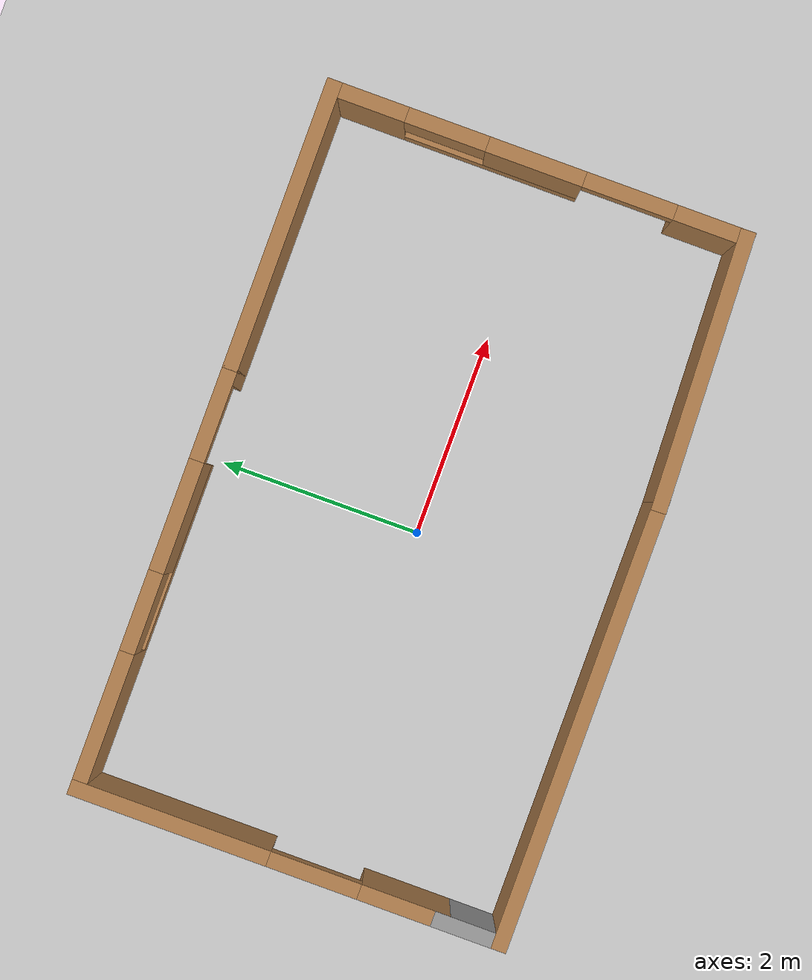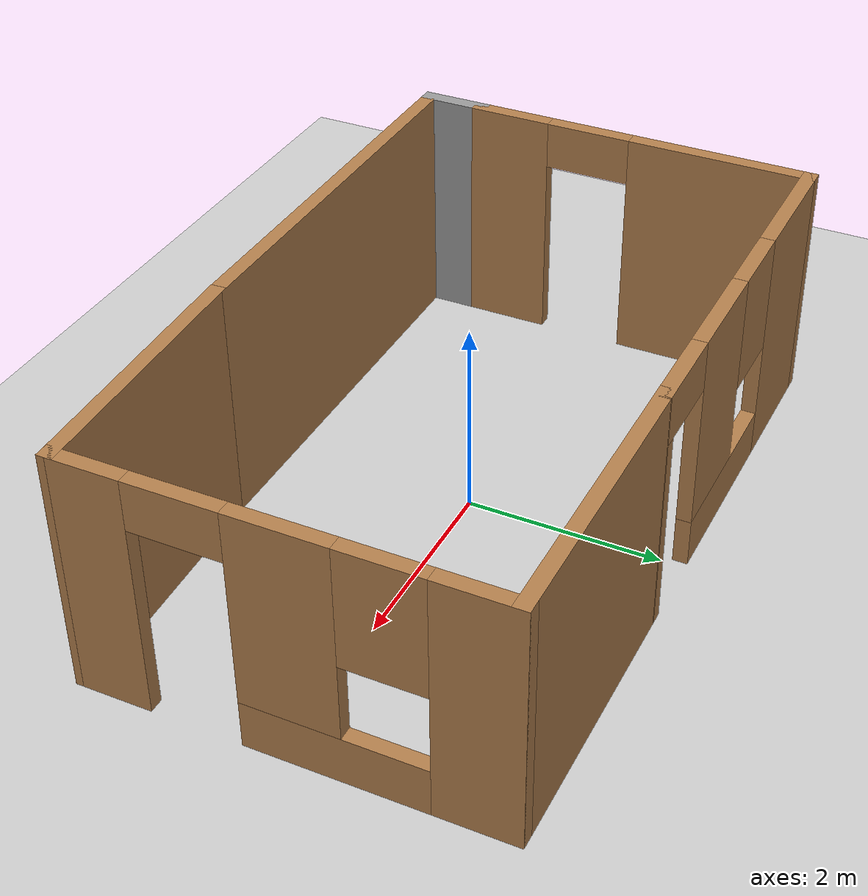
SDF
<sdf version="1.7">
 <world name="default">
  <light name="sun" type="directional">
   <pose>0 0 10 0 -0 0</pose>
   <diffuse>0.8 0.8 0.8 1</diffuse>
   <specular>0.2 0.2 0.2 1</specular>
   <attenuation>
    <range>1000</range>
    <constant>0.9</constant>
    <linear>0.01</linear>
    <quadratic>0.001</quadratic>
   </attenuation>
   <direction>-0.5 0.1 -0.9</direction>
   <spot><inner_angle>0</inner_angle><outer_angle>0</outer_angle><falloff>0</falloff></spot>
  </light>
  <model name="ground_plane">
   <static>1</static>
   <link name="link">
    <collision name="collision">
     <geometry><plane><normal>0 0 1</normal><size>100 100</size></plane></geometry>
     <surface><friction><ode><mu>100</mu><mu2>50</mu2></ode></friction></surface>
    </collision>
    <visual name="visual">
     <cast_shadows>0</cast_shadows>
     <geometry><plane><normal>0 0 1</normal><size>100 100</size></plane></geometry>
     <material>
      <script><uri>file://media/materials/scripts/gazebo.material</uri><name>Gazebo/Grey</name></script>
     </material>
    </visual>
   </link>
  </model>
  <gravity>0 0 -9.8</gravity>
  <magnetic_field>6e-06 2.3e-05 -4.2e-05</magnetic_field>
  <atmosphere type="adiabatic"/>
  <physics type="ode">
   <max_step_size>0.001</max_step_size>
   <real_time_factor>1</real_time_factor>
   <real_time_update_rate>1000</real_time_update_rate>
  </physics>
  <scene><ambient>0.4 0.4 0.4 1</ambient><background>0.7 0.7 0.7 1</background><shadows>1</shadows></scene>
  <audio><device>default</device></audio>
  <spherical_coordinates>
   <surface_model>EARTH_WGS84</surface_model>
   <latitude_deg>0</latitude_deg>
   <longitude_deg>0</longitude_deg>
   <elevation>0</elevation>
   <heading_deg>0</heading_deg>
  </spherical_coordinates>
  <model name="test">
   <pose>0.16051 0.06262 0 0 -0 0</pose>
   <link name="Wall_10">
    <collision name="Wall_10_Collision">
     <geometry><box><size>2.75192 0.15 2.5</size></box></geometry>
     <pose>0 0 1.25 0 -0 0</pose>
    </collision>
    <visual name="Wall_10_Visual">
     <pose>0 0 1.25 0 -0 0</pose>
     <geometry><box><size>2.75192 0.15 2.5</size></box></geometry>
     <material>
      <script><uri>file://media/materials/scripts/gazebo.material</uri><name>Gazebo/Wood</name></script>
      <ambient>1 1 1 1</ambient>
     </material>
     <meta><layer>0</layer></meta>
    </visual>
    <pose>2.17359 -2.04859 0 0 -0 -3.10315</pose>
   </link>
   <link name="Wall_3">
    <collision name="Wall_3_Collision">
     <geometry><box><size>4.5 0.15 2.5</size></box></geometry>
     <pose>0 0 1.25 0 -0 0</pose>
    </collision>
    <visual name="Wall_3_Visual">
     <pose>0 0 1.25 0 -0 0</pose>
     <geometry><box><size>4.5 0.15 2.5</size></box></geometry>
     <material>
      <script><uri>file://media/materials/scripts/gazebo.material</uri><name>Gazebo/Wood</name></script>
      <ambient>1 1 1 1</ambient>
     </material>
     <meta><layer>0</layer></meta>
    </visual>
    <pose>-1.30141 -2.09859 0 0 -0 3.14159</pose>
   </link>
   <link name="Wall_4">
    <collision name="Wall_4_Collision">
     <geometry><box><size>0.75 0.15 2.5</size></box></geometry>
     <pose>0 0 1.25 0 -0 0</pose>
    </collision>
    <visual name="Wall_4_Visual">
     <pose>0 0 1.25 0 -0 0</pose>
     <geometry><box><size>0.75 0.15 2.5</size></box></geometry>
     <material>
      <script><uri>file://media/materials/scripts/gazebo.material</uri><name>Gazebo/Grey</name></script>
      <ambient>1 1 1 1</ambient>
     </material>
     <meta><layer>0</layer></meta>
    </visual>
    <pose>-3.47641 -1.79859 0 0 -0 1.5708</pose>
   </link>
   <link name="Wall_6">
    <pose>-3.47641 0.301413 0 0 -0 1.5708</pose>
    <visual name="Wall_6_Visual_0">
     <pose>-1.435 0 1.25 0 -0 0</pose>
     <geometry><box><size>0.879991 0.15 2.5</size></box></geometry>
     <material>
      <script><uri>file://media/materials/scripts/gazebo.material</uri><name>Gazebo/Wood</name></script>
      <ambient>1 1 1 1</ambient>
     </material>
     <meta><layer>0</layer></meta>
    </visual>
    <collision name="Wall_6_Collision_0">
     <geometry><box><size>0.879991 0.15 2.5</size></box></geometry>
     <pose>-1.435 0 1.25 0 -0 0</pose>
    </collision>
    <visual name="Wall_6_Visual_1">
     <pose>0.889996 0 1.25 0 -0 0</pose>
     <geometry><box><size>1.97001 0.15 2.5</size></box></geometry>
     <material>
      <script><uri>file://media/materials/scripts/gazebo.material</uri><name>Gazebo/Wood</name></script>
      <ambient>1 1 1 1</ambient>
     </material>
     <meta><layer>0</layer></meta>
    </visual>
    <collision name="Wall_6_Collision_1">
     <geometry><box><size>1.97001 0.15 2.5</size></box></geometry>
     <pose>0.889996 0 1.25 0 -0 0</pose>
    </collision>
    <visual name="Wall_6_Visual_2">
     <pose>-0.545009 0 2.25 0 -0 0</pose>
     <geometry><box><size>0.9 0.15 0.5</size></box></geometry>
     <material>
      <script><uri>file://media/materials/scripts/gazebo.material</uri><name>Gazebo/Wood</name></script>
      <ambient>1 1 1 1</ambient>
     </material>
     <meta><layer>0</layer></meta>
    </visual>
    <collision name="Wall_6_Collision_2">
     <geometry><box><size>0.9 0.15 0.5</size></box></geometry>
     <pose>-0.545009 0 2.25 0 -0 0</pose>
    </collision>
   </link>
   <link name="Wall_7">
    <pose>-1.42641 2.10141 0 0 -0 0</pose>
    <visual name="Wall_7_Visual_0">
     <pose>-1.41056 0 1.25 0 -0 0</pose>
     <geometry><box><size>1.42887 0.15 2.5</size></box></geometry>
     <material>
      <script><uri>file://media/materials/scripts/gazebo.material</uri><name>Gazebo/Wood</name></script>
      <ambient>1 1 1 1</ambient>
     </material>
     <meta><layer>0</layer></meta>
    </visual>
    <collision name="Wall_7_Collision_0">
     <geometry><box><size>1.42887 0.15 2.5</size></box></geometry>
     <pose>-1.41056 0 1.25 0 -0 0</pose>
    </collision>
    <visual name="Wall_7_Visual_1">
     <pose>2.11494 0 1.25 0 -0 0</pose>
     <geometry><box><size>0.020113 0.15 2.5</size></box></geometry>
     <material>
      <script><uri>file://media/materials/scripts/gazebo.material</uri><name>Gazebo/Wood</name></script>
      <ambient>1 1 1 1</ambient>
     </material>
     <meta><layer>0</layer></meta>
    </visual>
    <collision name="Wall_7_Collision_1">
     <geometry><box><size>0.020113 0.15 2.5</size></box></geometry>
     <pose>2.11494 0 1.25 0 -0 0</pose>
    </collision>
    <visual name="Wall_7_Visual_2">
     <pose>0.254379 0 0.25 0 -0 0</pose>
     <geometry><box><size>1.90102 0.15 0.5</size></box></geometry>
     <material>
      <script><uri>file://media/materials/scripts/gazebo.material</uri><name>Gazebo/Wood</name></script>
      <ambient>1 1 1 1</ambient>
     </material>
     <meta><layer>0</layer></meta>
    </visual>
    <collision name="Wall_7_Collision_2">
     <geometry><box><size>1.90102 0.15 0.5</size></box></geometry>
     <pose>0.254379 0 0.25 0 -0 0</pose>
    </collision>
    <visual name="Wall_7_Visual_3">
     <pose>0.654379 0 1.5 0 -0 0</pose>
     <geometry><box><size>1.10102 0.15 2</size></box></geometry>
     <material>
      <script><uri>file://media/materials/scripts/gazebo.material</uri><name>Gazebo/Wood</name></script>
      <ambient>1 1 1 1</ambient>
     </material>
     <meta><layer>0</layer></meta>
    </visual>
    <collision name="Wall_7_Collision_3">
     <geometry><box><size>1.10102 0.15 2</size></box></geometry>
     <pose>0.654379 0 1.5 0 -0 0</pose>
    </collision>
    <visual name="Wall_7_Visual_4">
     <pose>-0.296129 0 1.9 0 -0 0</pose>
     <geometry><box><size>0.8 0.15 1.2</size></box></geometry>
     <material>
      <script><uri>file://media/materials/scripts/gazebo.material</uri><name>Gazebo/Wood</name></script>
      <ambient>1 1 1 1</ambient>
     </material>
     <meta><layer>0</layer></meta>
    </visual>
    <collision name="Wall_7_Collision_4">
     <geometry><box><size>0.8 0.15 1.2</size></box></geometry>
     <pose>-0.296129 0 1.9 0 -0 0</pose>
    </collision>
    <visual name="Wall_7_Visual_5">
     <pose>1.65489 0 2.25 0 -0 0</pose>
     <geometry><box><size>0.9 0.15 0.5</size></box></geometry>
     <material>
      <script><uri>file://media/materials/scripts/gazebo.material</uri><name>Gazebo/Wood</name></script>
      <ambient>1 1 1 1</ambient>
     </material>
     <meta><layer>0</layer></meta>
    </visual>
    <collision name="Wall_7_Collision_5">
     <geometry><box><size>0.9 0.15 0.5</size></box></geometry>
     <pose>1.65489 0 2.25 0 -0 0</pose>
    </collision>
   </link>
   <link name="Wall_8">
    <collision name="Wall_8_Collision">
     <geometry><box><size>3 0.15 2.5</size></box></geometry>
     <pose>0 0 1.25 0 -0 0</pose>
    </collision>
    <visual name="Wall_8_Visual">
     <pose>0 0 1.25 0 -0 0</pose>
     <geometry><box><size>3 0.15 2.5</size></box></geometry>
     <material>
      <script><uri>file://media/materials/scripts/gazebo.material</uri><name>Gazebo/Wood</name></script>
      <ambient>1 1 1 1</ambient>
     </material>
     <meta><layer>0</layer></meta>
    </visual>
    <pose>2.04859 2.10141 0 0 -0 0</pose>
   </link>
   <link name="Wall_9">
    <pose>3.47359 0.051413 0 0 -0 -1.5708</pose>
    <visual name="Wall_9_Visual_0">
     <pose>-1.7184 0 1.25 0 -0 0</pose>
     <geometry><box><size>0.813194 0.15 2.5</size></box></geometry>
     <material>
      <script><uri>file://media/materials/scripts/gazebo.material</uri><name>Gazebo/Wood</name></script>
      <ambient>1 1 1 1</ambient>
     </material>
     <meta><layer>0</layer></meta>
    </visual>
    <collision name="Wall_9_Collision_0">
     <geometry><box><size>0.813194 0.15 2.5</size></box></geometry>
     <pose>-1.7184 0 1.25 0 -0 0</pose>
    </collision>
    <visual name="Wall_9_Visual_1">
     <pose>1.73671 0 1.25 0 -0 0</pose>
     <geometry><box><size>0.776584 0.15 2.5</size></box></geometry>
     <material>
      <script><uri>file://media/materials/scripts/gazebo.material</uri><name>Gazebo/Wood</name></script>
      <ambient>1 1 1 1</ambient>
     </material>
     <meta><layer>0</layer></meta>
    </visual>
    <collision name="Wall_9_Collision_1">
     <geometry><box><size>0.776584 0.15 2.5</size></box></geometry>
     <pose>1.73671 0 1.25 0 -0 0</pose>
    </collision>
    <visual name="Wall_9_Visual_2">
     <pose>-0.431695 0 0.25 0 -0 0</pose>
     <geometry><box><size>1.76022 0.15 0.5</size></box></geometry>
     <material>
      <script><uri>file://media/materials/scripts/gazebo.material</uri><name>Gazebo/Wood</name></script>
      <ambient>1 1 1 1</ambient>
     </material>
     <meta><layer>0</layer></meta>
    </visual>
    <collision name="Wall_9_Collision_2">
     <geometry><box><size>1.76022 0.15 0.5</size></box></geometry>
     <pose>-0.431695 0 0.25 0 -0 0</pose>
    </collision>
    <visual name="Wall_9_Visual_3">
     <pose>-0.031695 0 1.5 0 -0 0</pose>
     <geometry><box><size>0.960221 0.15 2</size></box></geometry>
     <material>
      <script><uri>file://media/materials/scripts/gazebo.material</uri><name>Gazebo/Wood</name></script>
      <ambient>1 1 1 1</ambient>
     </material>
     <meta><layer>0</layer></meta>
    </visual>
    <collision name="Wall_9_Collision_3">
     <geometry><box><size>0.960221 0.15 2</size></box></geometry>
     <pose>-0.031695 0 1.5 0 -0 0</pose>
    </collision>
    <visual name="Wall_9_Visual_4">
     <pose>-0.911806 0 1.9 0 -0 0</pose>
     <geometry><box><size>0.8 0.15 1.2</size></box></geometry>
     <material>
      <script><uri>file://media/materials/scripts/gazebo.material</uri><name>Gazebo/Wood</name></script>
      <ambient>1 1 1 1</ambient>
     </material>
     <meta><layer>0</layer></meta>
    </visual>
    <collision name="Wall_9_Collision_4">
     <geometry><box><size>0.8 0.15 1.2</size></box></geometry>
     <pose>-0.911806 0 1.9 0 -0 0</pose>
    </collision>
    <visual name="Wall_9_Visual_5">
     <pose>0.898416 0 2.25 0 -0 0</pose>
     <geometry><box><size>0.9 0.15 0.5</size></box></geometry>
     <material>
      <script><uri>file://media/materials/scripts/gazebo.material</uri><name>Gazebo/Wood</name></script>
      <ambient>1 1 1 1</ambient>
     </material>
     <meta><layer>0</layer></meta>
    </visual>
    <collision name="Wall_9_Collision_5">
     <geometry><box><size>0.9 0.15 0.5</size></box></geometry>
     <pose>0.898416 0 2.25 0 -0 0</pose>
    </collision>
   </link>
   <static>1</static>
  </model>
 </world>
</sdf>
